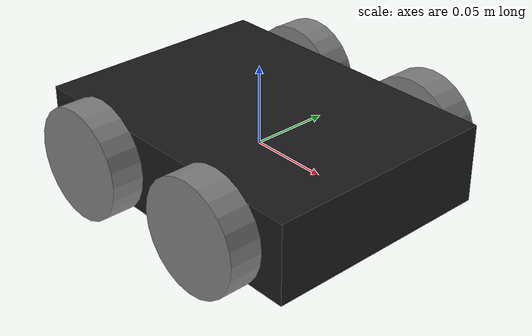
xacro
<?xml version="1.0"?>
<robot name="robocar" xmlns:xacro="http://www.ros.org/wiki/xacro">
  <!-- Robot dimensions and properties -->
  <xacro:property name="chassis_length" value="0.2"/>
  <xacro:property name="chassis_width" value="0.15"/>
  <xacro:property name="chassis_height" value="0.05"/>
  <xacro:property name="wheel_radius" value="0.035"/>
  <xacro:property name="wheel_width" value="0.02"/>
  <xacro:property name="wheel_mass" value="0.1"/>
  <xacro:property name="chassis_mass" value="1.0"/>

  <!-- Material definitions -->
  <material name="black">
    <color rgba="0.1 0.1 0.1 1.0"/>
  </material>
  <material name="gray">
    <color rgba="0.5 0.5 0.5 1.0"/>
  </material>

  <!-- Base Link (Chassis) -->
  <link name="base_link">
    <visual>
      <geometry>
        <box size="${chassis_length} ${chassis_width} ${chassis_height}"/>
      </geometry>
      <material name="black"/>
    </visual>
    <collision>
      <geometry>
        <box size="${chassis_length} ${chassis_width} ${chassis_height}"/>
      </geometry>
    </collision>
    <inertial>
      <mass value="${chassis_mass}"/>
      <inertia
        ixx="${chassis_mass * (chassis_width*chassis_width + chassis_height*chassis_height) / 12.0}"
        ixy="0.0"
        ixz="0.0"
        iyy="${chassis_mass * (chassis_length*chassis_length + chassis_height*chassis_height) / 12.0}"
        iyz="0.0"
        izz="${chassis_mass * (chassis_length*chassis_length + chassis_width*chassis_width) / 12.0}"/>
    </inertial>
  </link>

  <!-- Wheels (Front Left, Front Right, Rear Left, Rear Right) -->
  <link name="front_left_wheel">
    <visual>
      <geometry>
        <cylinder radius="${wheel_radius}" length="${wheel_width}"/>
      </geometry>
      <material name="gray"/>
    </visual>
    <collision>
      <geometry>
        <cylinder radius="${wheel_radius}" length="${wheel_width}"/>
      </geometry>
    </collision>
    <inertial>
      <mass value="${wheel_mass}"/>
      <inertia
        ixx="${wheel_mass * (3*wheel_radius*wheel_radius + wheel_width*wheel_width) / 12.0}"
        ixy="0.0"
        ixz="0.0"
        iyy="${wheel_mass * (3*wheel_radius*wheel_radius + wheel_width*wheel_width) / 12.0}"
        iyz="0.0"
        izz="${wheel_mass * wheel_radius*wheel_radius / 2.0}"/>
    </inertial>
  </link>

  <joint name="front_left_wheel_joint" type="continuous">
    <parent link="base_link"/>
    <child link="front_left_wheel"/>
    <origin xyz="${chassis_length/4} ${chassis_width/2+wheel_width/2} 0" rpy="${pi/2} 0 0"/>
    <axis xyz="0 0 1"/>
  </joint>

  <!-- Add Front Right, Rear Left, and Rear Right wheels similarly -->
  <link name="front_right_wheel">
    <visual>
      <geometry>
        <cylinder radius="${wheel_radius}" length="${wheel_width}"/>
      </geometry>
      <material name="gray"/>
    </visual>
    <collision>
      <geometry>
        <cylinder radius="${wheel_radius}" length="${wheel_width}"/>
      </geometry>
    </collision>
    <inertial>
      <mass value="${wheel_mass}"/>
      <inertia
        ixx="${wheel_mass * (3*wheel_radius*wheel_radius + wheel_width*wheel_width) / 12.0}"
        ixy="0.0"
        ixz="0.0"
        iyy="${wheel_mass * (3*wheel_radius*wheel_radius + wheel_width*wheel_width) / 12.0}"
        iyz="0.0"
        izz="${wheel_mass * wheel_radius*wheel_radius / 2.0}"/>
    </inertial>
  </link>

  <joint name="front_right_wheel_joint" type="continuous">
    <parent link="base_link"/>
    <child link="front_right_wheel"/>
    <origin xyz="${chassis_length/4} ${-chassis_width/2-wheel_width/2} 0" rpy="${pi/2} 0 0"/>
    <axis xyz="0 0 1"/>
  </joint>

  <link name="rear_left_wheel">
    <visual>
      <geometry>
        <cylinder radius="${wheel_radius}" length="${wheel_width}"/>
      </geometry>
      <material name="gray"/>
    </visual>
    <collision>
      <geometry>
        <cylinder radius="${wheel_radius}" length="${wheel_width}"/>
      </geometry>
    </collision>
    <inertial>
      <mass value="${wheel_mass}"/>
      <inertia
        ixx="${wheel_mass * (3*wheel_radius*wheel_radius + wheel_width*wheel_width) / 12.0}"
        ixy="0.0"
        ixz="0.0"
        iyy="${wheel_mass * (3*wheel_radius*wheel_radius + wheel_width*wheel_width) / 12.0}"
        iyz="0.0"
        izz="${wheel_mass * wheel_radius*wheel_radius / 2.0}"/>
    </inertial>
  </link>

  <joint name="rear_left_wheel_joint" type="continuous">
    <parent link="base_link"/>
    <child link="rear_left_wheel"/>
    <origin xyz="${-chassis_length/4} ${chassis_width/2+wheel_width/2} 0" rpy="${pi/2} 0 0"/>
    <axis xyz="0 0 1"/>
  </joint>

  <link name="rear_right_wheel">
    <visual>
      <geometry>
        <cylinder radius="${wheel_radius}" length="${wheel_width}"/>
      </geometry>
      <material name="gray"/>
    </visual>
    <collision>
      <geometry>
        <cylinder radius="${wheel_radius}" length="${wheel_width}"/>
      </geometry>
    </collision>
    <inertial>
      <mass value="${wheel_mass}"/>
      <inertia
        ixx="${wheel_mass * (3*wheel_radius*wheel_radius + wheel_width*wheel_width) / 12.0}"
        ixy="0.0"
        ixz="0.0"
        iyy="${wheel_mass * (3*wheel_radius*wheel_radius + wheel_width*wheel_width) / 12.0}"
        iyz="0.0"
        izz="${wheel_mass * wheel_radius*wheel_radius / 2.0}"/>
    </inertial>
  </link>

  <joint name="rear_right_wheel_joint" type="continuous">
    <parent link="base_link"/>
    <child link="rear_right_wheel"/>
    <origin xyz="${-chassis_length/4} ${-chassis_width/2-wheel_width/2} 0" rpy="${pi/2} 0 0"/>
    <axis xyz="0 0 1"/>
  </joint>

  <!-- ================ GAZEBO PLUGINS ================ -->

  <!-- Differential drive controller -->
  <gazebo>
  <plugin filename="gz-sim-diff-drive-system" name="gz::sim::systems::DiffDrive">
      <left_joint>front_left_wheel_joint</left_joint>
      <left_joint>rear_left_wheel_joint</left_joint>
      <right_joint>front_right_wheel_joint</right_joint>
      <right_joint>rear_right_wheel_joint</right_joint>
      <wheel_separation>${chassis_width + wheel_width}</wheel_separation>
      <wheel_radius>${wheel_radius}</wheel_radius>
      <odom_publish_frequency>30</odom_publish_frequency>
      <topic>/model/robocar/cmd_vel</topic>
      <min_velocity>-1.0</min_velocity>
      <max_linear_acceleration>5.0</max_linear_acceleration>
      <max_angular_acceleration>5.0</max_angular_acceleration>
      <max_linear_velocity>1.0</max_linear_velocity>
      <max_angular_velocity>2.0</max_angular_velocity>
    </plugin>
  </gazebo>

  <!-- Material properties for Gazebo -->
  <gazebo reference="base_link">
    <material>Gazebo/Black</material>
  </gazebo>

  <gazebo reference="front_left_wheel">
    <material>Gazebo/Grey</material>
    <mu1>1.0</mu1>
    <mu2>1.0</mu2>
  </gazebo>

  <gazebo reference="front_right_wheel">
    <material>Gazebo/Grey</material>
    <mu1>1.0</mu1>
    <mu2>1.0</mu2>
  </gazebo>

  <gazebo reference="rear_left_wheel">
    <material>Gazebo/Grey</material>
    <mu1>1.0</mu1>
    <mu2>1.0</mu2>
  </gazebo>

  <gazebo reference="rear_right_wheel">
    <material>Gazebo/Grey</material>
    <mu1>1.0</mu1>
    <mu2>1.0</mu2>
  </gazebo>
</robot>
